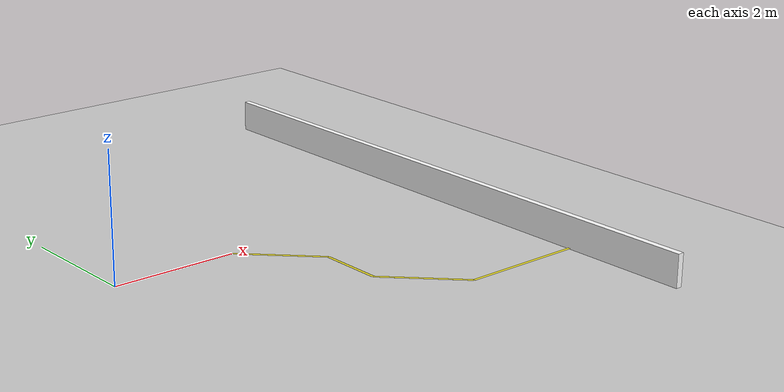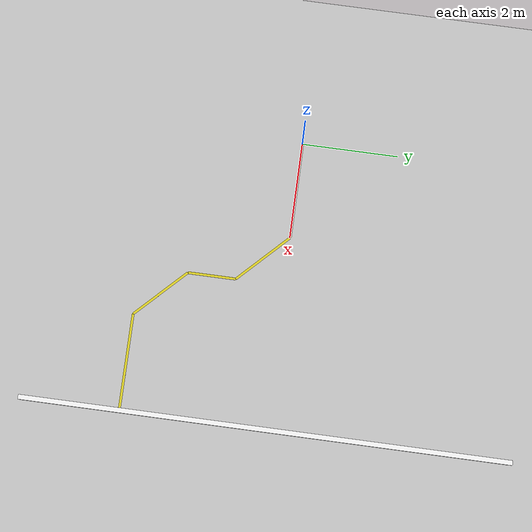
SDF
<sdf version="1.4">
    <world name="default">

        <scene>
            <ambient>0.4 0.4 0.4 1</ambient>
            <background>0.7 0.7 0.7 1</background>
            <shadows>true</shadows>
        </scene>

        <!-- A global light source -->
        <include>
            <uri>model://sun</uri>
        </include>

        <!-- A ground plane -->
        <include>
            <uri>model://ground_plane</uri>
        </include>

        <!-- My Road -->
        <include>
            <uri>model://single_line</uri>
        </include>

        <physics type="ode">
            <real_time_update_rate>1000.0</real_time_update_rate>
            <max_step_size>0.001</max_step_size>
            <real_time_factor>1</real_time_factor>
            <ode>
                <solver>
                    <type>quick</type>
                    <iters>150</iters>
                    <precon_iters>0</precon_iters>
                    <sor>1.400000</sor>
                    <use_dynamic_moi_rescaling>1</use_dynamic_moi_rescaling>
                </solver>
                <constraints>
                    <cfm>0.00001</cfm>
                    <erp>0.2</erp>
                    <contact_max_correcting_vel>2000.000000</contact_max_correcting_vel>
                    <contact_surface_layer>0.01000</contact_surface_layer>
                </constraints>
            </ode>
        </physics>
    </world>

</sdf>

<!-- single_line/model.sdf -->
<sdf version="1.6">
    <model name="line">
        <static>true</static>
        <link name="yellow_line_0">
            <pose frame=''>1 0 0.002 0 -0 0</pose>
            <collision name="collision">
                <geometry>
                    <plane>
                        <normal>0 0 1</normal>
                        <size>2 0.05</size>
                    </plane>
                </geometry>
                <surface>
                    <friction>
                        <ode>
                            <mu>100</mu>
                            <mu2>50</mu2>
                        </ode>
                    </friction>
                </surface>
            </collision>
            <visual name="visual_ground">
                <cast_shadows>false</cast_shadows>
                <geometry>
                    <plane>
                        <normal>0 0 1</normal>
                        <size>2 0.05</size>
                    </plane>
                </geometry>
                <material>
                    <script>
                        <uri>file://media/materials/scripts/gazebo.material</uri>
                        <name>Gazebo/Yellow</name>
                    </script>
                </material>
            </visual>
            <self_collide>0</self_collide>
            <kinematic>0</kinematic>
            <gravity>1</gravity>
        </link>
        <link name="yellow_line_1">
            <pose frame=''>2.5 -0.5 0.002 0 -0 -0.7854</pose>
            <collision name="collision">
                <geometry>
                    <plane>
                        <normal>0 0 1</normal>
                        <size>1.4142 0.05</size>
                    </plane>
                </geometry>
                <surface>
                    <friction>
                        <ode>
                            <mu>100</mu>
                            <mu2>50</mu2>
                        </ode>
                    </friction>
                </surface>
            </collision>
            <visual name="visual_ground">
                <cast_shadows>false</cast_shadows>
                <geometry>
                    <plane>
                        <normal>0 0 1</normal>
                        <size>1.4142 0.05</size>
                    </plane>
                </geometry>
                <material>
                    <script>
                        <uri>file://media/materials/scripts/gazebo.material</uri>
                        <name>Gazebo/Yellow</name>
                    </script>
                </material>
            </visual>
            <self_collide>0</self_collide>
            <kinematic>0</kinematic>
            <gravity>1</gravity>
        </link>
        <link name="yellow_line_2">
            <pose frame=''>3 -1.5 0.002 0 -0 -1.5708</pose>
            <collision name="collision">
                <geometry>
                    <plane>
                        <normal>0 0 1</normal>
                        <size>1 0.05</size>
                    </plane>
                </geometry>
                <surface>
                    <friction>
                        <ode>
                            <mu>100</mu>
                            <mu2>50</mu2>
                        </ode>
                    </friction>
                </surface>
            </collision>
            <visual name="visual_ground">
                <cast_shadows>false</cast_shadows>
                <geometry>
                    <plane>
                        <normal>0 0 1</normal>
                        <size>1 0.05</size>
                    </plane>
                </geometry>
                <material>
                    <script>
                        <uri>file://media/materials/scripts/gazebo.material</uri>
                        <name>Gazebo/Yellow</name>
                    </script>
                </material>
            </visual>
            <self_collide>0</self_collide>
            <kinematic>0</kinematic>
            <gravity>1</gravity>
        </link>
        <link name="yellow_line_3">
            <pose frame=''>3.5 -2.5 0.002 0 -0 -0.7854</pose>
            <collision name="collision">
                <geometry>
                    <plane>
                        <normal>0 0 1</normal>
                        <size>1.4142 0.05</size>
                    </plane>
                </geometry>
                <surface>
                    <friction>
                        <ode>
                            <mu>100</mu>
                            <mu2>50</mu2>
                        </ode>
                    </friction>
                </surface>
            </collision>
            <visual name="visual_ground">
                <cast_shadows>false</cast_shadows>
                <geometry>
                    <plane>
                        <normal>0 0 1</normal>
                        <size>1.4142 0.05</size>
                    </plane>
                </geometry>
                <material>
                    <script>
                        <uri>file://media/materials/scripts/gazebo.material</uri>
                        <name>Gazebo/Yellow</name>
                    </script>
                </material>
            </visual>
            <self_collide>0</self_collide>
            <kinematic>0</kinematic>
            <gravity>1</gravity>
        </link>
        <link name="yellow_line_4">
            <pose frame=''>5 -3.0 0.002 0 -0 0</pose>
            <collision name="collision">
                <geometry>
                    <plane>
                        <normal>0 0 1</normal>
                        <size>2 0.05</size>
                    </plane>
                </geometry>
                <surface>
                    <friction>
                        <ode>
                            <mu>100</mu>
                            <mu2>50</mu2>
                        </ode>
                    </friction>
                </surface>
            </collision>
            <visual name="visual_ground">
                <cast_shadows>false</cast_shadows>
                <geometry>
                    <plane>
                        <normal>0 0 1</normal>
                        <size>2 0.05</size>
                    </plane>
                </geometry>
                <material>
                    <script>
                        <uri>file://media/materials/scripts/gazebo.material</uri>
                        <name>Gazebo/Yellow</name>
                    </script>
                </material>
            </visual>
            <self_collide>0</self_collide>
            <kinematic>0</kinematic>
            <gravity>1</gravity>
        </link>
        <link name='chassis_lower'>
            <pose>6 0 0 0 0 0</pose>

            <collision name='collision'>
                <geometry>
                    <box>
                        <size>.1 10 1</size>
                    </box>
                </geometry>
            </collision>

            <visual name='visual'>
                <geometry>
                    <box>
                        <size>.1 10 1</size>
                    </box>
                </geometry>
                <material>
                    <ambient>1 1 1 1</ambient>
                    <diffuse>1 1 1 1</diffuse>
                    <specular>0.1 0.1 0.1 1</specular>
                    <emissive>0 0 0 0</emissive>
                </material>
            </visual>
        </link>
    </model>
</sdf>
